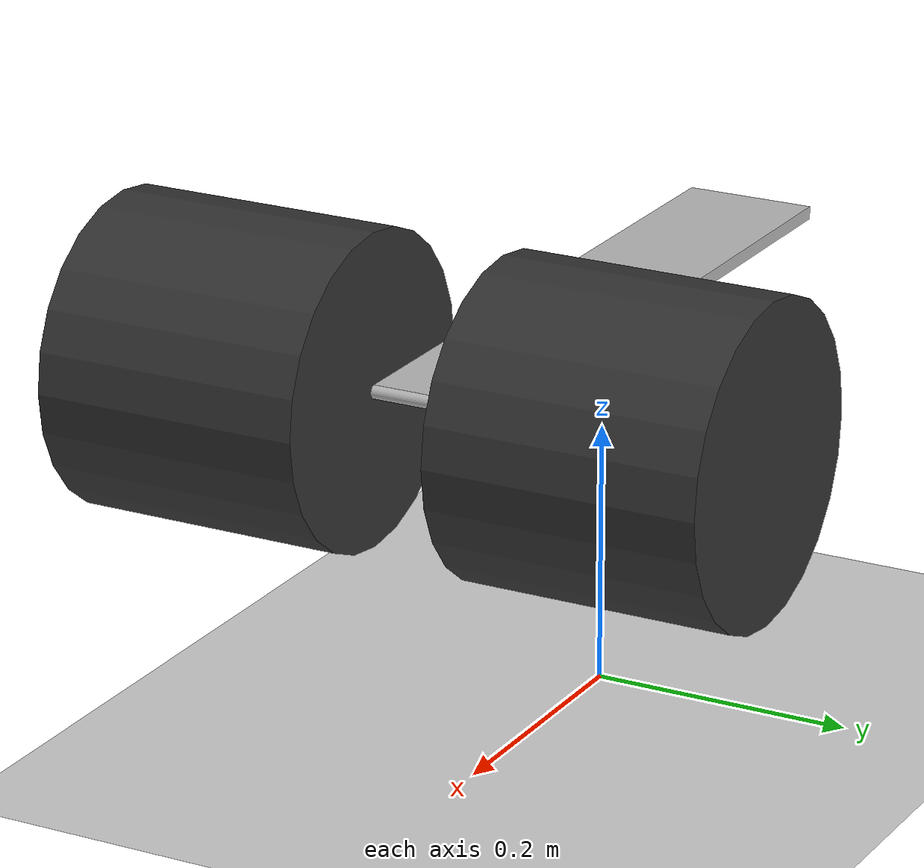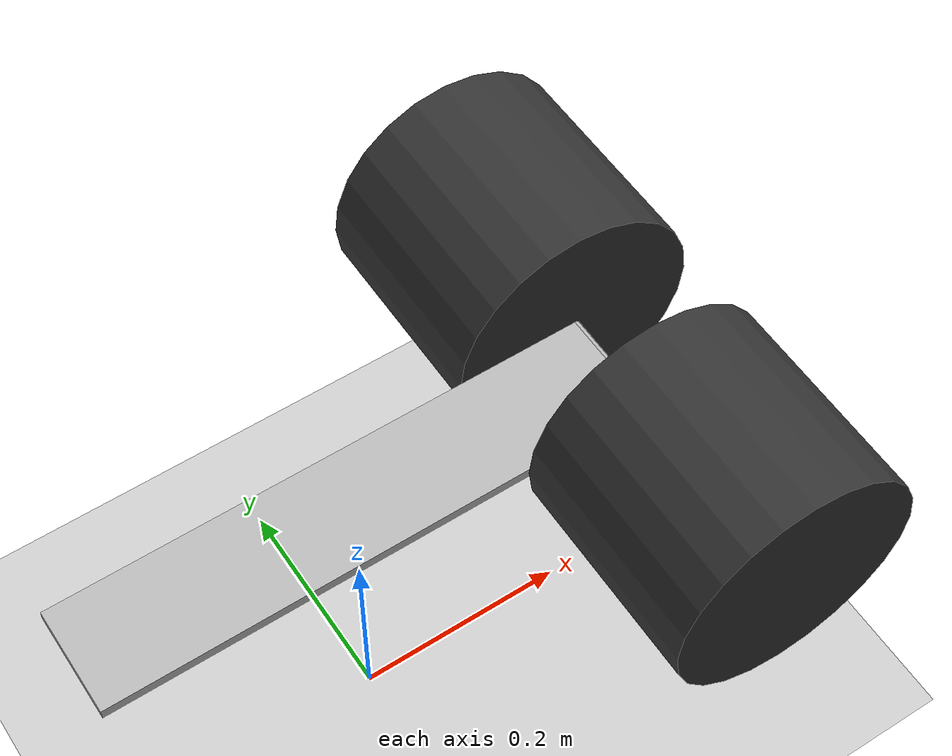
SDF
<?xml version="1.0" ?>
<sdf version="1.6">
    <world name="default">
        <include>
            <uri>model://ground_plane</uri>
        </include>

        <!-- Global light source -->
        <include>
            <uri>model://sun</uri>
        </include>

        <!-- Example track -->
        <include>
            <uri>model://example_lugged_wheel</uri>
            <pose>0 0 0.3 0 0 0</pose>
        </include>

        <!-- Rigid anchor for the track -->

        <!-- camera angle -->
        <gui fullscreen='0'>
            <camera name='user_camera'>
                <pose>2.0 -1.5 1.0 0.0 0.3 2.45</pose>
                <view_controller>orbit</view_controller>
            </camera>
        </gui>
    </world>
</sdf>

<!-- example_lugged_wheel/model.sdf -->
<sdf version='1.6'>
  <model name='example_lugged_wheel'>
    <link name='stabilizer'>
      <pose frame=''>0 0 0 0 -0 0</pose>
      <inertial>
        <pose frame=''>0 0 0 0 -0 0</pose>
        <mass>0.1</mass>
        <inertia>
          <ixx>8.41667e-05</ixx>
          <ixy>0</ixy>
          <ixz>0</ixz>
          <iyy>0.00208417</iyy>
          <iyz>0</iyz>
          <izz>0.00216667</izz>
        </inertia>
      </inertial>
      <collision name='stabilizer_collision'>
        <pose frame=''>0 0 0 0 -0 0</pose>
        <geometry>
          <box>
            <size>0.5 0.1 0.01</size>
          </box>
        </geometry>
        <surface>
          <contact>
            <ode/>
          </contact>
          <friction>
            <ode>
              <mu>0.01</mu>
              <mu2>0.01</mu2>
            </ode>
          </friction>
        </surface>
      </collision>
      <visual name='stabilizer_visual'>
        <pose frame=''>0 0 0 0 -0 0</pose>
        <geometry>
          <box>
            <size>0.5 0.1 0.01</size>
          </box>
        </geometry>
        <material>
          <script>
            <uri>__default__</uri>
            <name>__default__</name>
          </script>
        </material>
      </visual>
      <gravity>1</gravity>
      <velocity_decay/>
    </link>
    <link name='shaft'>
      <pose frame=''>0.25 0 0 0 -0 0</pose>
      <inertial>
        <pose frame=''>0 0 0 0 -0 0</pose>
        <mass>0.05</mass>
        <inertia>
          <ixx>4.19792e-05</ixx>
          <ixy>0</ixy>
          <ixz>0</ixz>
          <iyy>6.25e-07</iyy>
          <iyz>0</iyz>
          <izz>4.19792e-05</izz>
        </inertia>
      </inertial>
      <collision name='shaft_collision'>
        <pose frame=''>0 0 0 1.5708 -0 0</pose>
        <geometry>
          <cylinder>
            <length>0.1</length>
            <radius>0.005</radius>
          </cylinder>
        </geometry>
      </collision>
      <visual name='shaft_visual'>
        <pose frame=''>0 0 0 1.5708 -0 0</pose>
        <geometry>
          <cylinder>
            <length>0.1</length>
            <radius>0.005</radius>
          </cylinder>
        </geometry>
      </visual>
    </link>
    <joint name='shaft_axle' type='revolute'>
      <child>shaft</child>
      <parent>stabilizer</parent>
      <axis>
        <xyz>0 1 0</xyz>
        <limit>
          <lower>-1e+16</lower>
          <upper>1e+16</upper>
        </limit>
        <dynamics>
          <spring_reference>0</spring_reference>
          <spring_stiffness>0</spring_stiffness>
        </dynamics>
        <use_parent_model_frame>1</use_parent_model_frame>
      </axis>
    </joint>
    <link name='left_wheel_arc_segment_link0'>
      <pose frame=''>0.25 0.15 0.115 0 -0 0</pose>
      <inertial>
        <pose frame=''>0 0 -0.115 1.5708 -0 0</pose>
        <mass>0.1</mass>
        <inertia>
          <ixx>0.000663958</ixx>
          <ixy>0</ixy>
          <ixz>0</ixz>
          <iyy>0.000663958</iyy>
          <iyz>0</iyz>
          <izz>0.00066125</izz>
        </inertia>
      </inertial>
      <collision name='collision'>
        <pose frame=''>0 0 -0.115 1.5708 -0 0</pose>
        <geometry>
          <cylinder>
            <length>0.2</length>
            <radius>0.115</radius>
          </cylinder>
        </geometry>
        <surface>
          <friction>
            <ode>
              <mu>0.5</mu>
              <mu2>0.5</mu2>
            </ode>
          </friction>
          <contact>
            <ode>
              <min_depth>0.01</min_depth>
            </ode>
          </contact>
        </surface>
      </collision>
      <visual name='visual'>
        <pose frame=''>0 0 -0.115 1.5708 -0 0</pose>
        <geometry>
          <cylinder>
            <length>0.2</length>
            <radius>0.115</radius>
          </cylinder>
        </geometry>
        <material>
          <ambient>0.8 0.8 0.8 1</ambient>
          <diffuse>0.2 0.2 0.2 1</diffuse>
          <specular>0 0 0 1</specular>
          <emissive>0 0 0 1</emissive>
        </material>
      </visual>
    </link>
    <joint name='left_wheel_arc_segment_joint0' type='revolute'>
      <child>left_wheel_arc_segment_link0</child>
      <parent>stabilizer</parent>
      <pose frame=''>0 0 -0.115 0 -0 0</pose>
      <axis>
        <xyz>0 1 0</xyz>
        <use_parent_model_frame>0</use_parent_model_frame>
        <use_parent_model_frame>1</use_parent_model_frame>
        <limit>
          <lower>-1e+16</lower>
          <upper>1e+16</upper>
        </limit>
      </axis>
      <physics>
        <ode>
          <implicit_spring_damper>1</implicit_spring_damper>
        </ode>
      </physics>
    </joint>
    <plugin name='left_wheel' filename='libContinuousTrack.so'>
      <sprocket>
        <joint>shaft_axle</joint>
        <pitch_diameter>0.24</pitch_diameter>
      </sprocket>
      <trajectory>
        <segment>
          <joint>left_wheel_arc_segment_joint0</joint>
          <end_position>6.28318530718</end_position>
        </segment>
      </trajectory>
      <pattern>
        <elements_per_round>8</elements_per_round>
        <element>
          <collision name='collision'>
            <pose>0 0 0.03 0 0 0</pose>
            <geometry>
              <box>
                <size>0.005 0.2 0.07</size>
              </box>
            </geometry>
            <surface>
              <friction>
                <ode>
                  <mu>0.5</mu>
                  <mu2>0.5</mu2>
                </ode>
              </friction>
              <contact>
                <ode>
                  <min_depth>0.01</min_depth>
                </ode>
              </contact>
            </surface>
          </collision>
          <visual name='visual'>
            <pose>0 0 0.03 0 0 0</pose>
            <geometry>
              <box>
                <size>0.005 0.2 0.07</size>
              </box>
            </geometry>
            <material>
              <ambient>0.8 0.8 0.8 1</ambient>
              <diffuse>0.2 0.2 0.2 1</diffuse>
              <specular>0 0 0 1</specular>
              <emissive>0 0 0 1</emissive>
            </material>
          </visual>
        </element>
      </pattern>
    </plugin>
    <link name='right_wheel_arc_segment_link0'>
      <pose frame=''>0.25 -0.15 0.115 0 -0 0</pose>
      <inertial>
        <pose frame=''>0 0 -0.115 1.5708 -0 0</pose>
        <mass>0.1</mass>
        <inertia>
          <ixx>0.000663958</ixx>
          <ixy>0</ixy>
          <ixz>0</ixz>
          <iyy>0.000663958</iyy>
          <iyz>0</iyz>
          <izz>0.00066125</izz>
        </inertia>
      </inertial>
      <collision name='collision'>
        <pose frame=''>0 0 -0.115 1.5708 -0 0</pose>
        <geometry>
          <cylinder>
            <length>0.2</length>
            <radius>0.115</radius>
          </cylinder>
        </geometry>
        <surface>
          <friction>
            <ode>
              <mu>0.5</mu>
              <mu2>0.5</mu2>
            </ode>
          </friction>
          <contact>
            <ode>
              <min_depth>0.01</min_depth>
            </ode>
          </contact>
        </surface>
      </collision>
      <visual name='visual'>
        <pose frame=''>0 0 -0.115 1.5708 -0 0</pose>
        <geometry>
          <cylinder>
            <length>0.2</length>
            <radius>0.115</radius>
          </cylinder>
        </geometry>
        <material>
          <ambient>0.8 0.8 0.8 1</ambient>
          <diffuse>0.2 0.2 0.2 1</diffuse>
          <specular>0 0 0 1</specular>
          <emissive>0 0 0 1</emissive>
        </material>
      </visual>
    </link>
    <joint name='right_wheel_arc_segment_joint0' type='revolute'>
      <child>right_wheel_arc_segment_link0</child>
      <parent>stabilizer</parent>
      <pose frame=''>0 0 -0.115 0 -0 0</pose>
      <axis>
        <xyz>0 1 0</xyz>
        <use_parent_model_frame>0</use_parent_model_frame>
        <use_parent_model_frame>1</use_parent_model_frame>
        <limit>
          <lower>-1e+16</lower>
          <upper>1e+16</upper>
        </limit>
      </axis>
      <physics>
        <ode>
          <implicit_spring_damper>1</implicit_spring_damper>
        </ode>
      </physics>
    </joint>
    <plugin name='right_wheel' filename='libContinuousTrack.so'>
      <sprocket>
        <joint>shaft_axle</joint>
        <pitch_diameter>0.24</pitch_diameter>
      </sprocket>
      <trajectory>
        <segment>
          <joint>right_wheel_arc_segment_joint0</joint>
          <end_position>6.28318530718</end_position>
        </segment>
      </trajectory>
      <pattern>
        <elements_per_round>8</elements_per_round>
        <element>
          <collision name='collision'>
            <pose>0 0 0.03 0 0 0</pose>
            <geometry>
              <box>
                <size>0.005 0.2 0.07</size>
              </box>
            </geometry>
            <surface>
              <friction>
                <ode>
                  <mu>0.5</mu>
                  <mu2>0.5</mu2>
                </ode>
              </friction>
              <contact>
                <ode>
                  <min_depth>0.01</min_depth>
                </ode>
              </contact>
            </surface>
          </collision>
          <visual name='visual'>
            <pose>0 0 0.03 0 0 0</pose>
            <geometry>
              <box>
                <size>0.005 0.2 0.07</size>
              </box>
            </geometry>
            <material>
              <ambient>0.8 0.8 0.8 1</ambient>
              <diffuse>0.2 0.2 0.2 1</diffuse>
              <specular>0 0 0 1</specular>
              <emissive>0 0 0 1</emissive>
            </material>
          </visual>
        </element>
      </pattern>
    </plugin>
    <static>0</static>
    <plugin name='gazebo_ros_control' filename='libgazebo_ros_control.so'>
      <robotSimType>gazebo_ros_control/DefaultRobotHWSim</robotSimType>
      <legacyModeNS>false</legacyModeNS>
    </plugin>
  </model>
</sdf>
